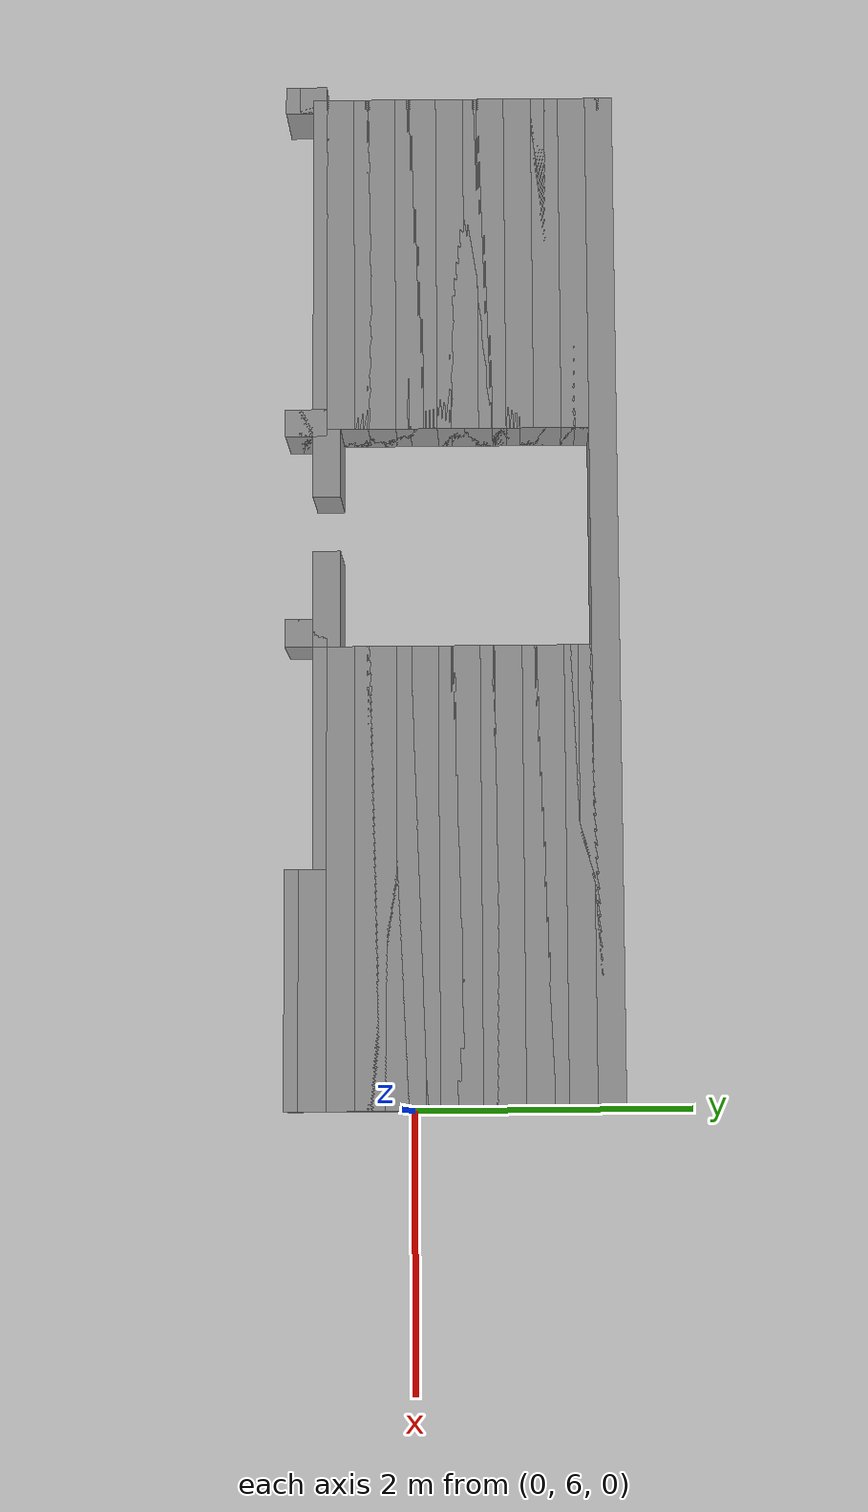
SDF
<sdf version="1.6">
 <world name="GridMap">
  <include><uri>model://sun</uri></include>
  <include><uri>model://ground_plane</uri></include>
  <model name="GridMap">
   <link name="Wall_(8.5,52.0)">
    <collision name="Wall_(8.5,52.0)_Collision">
     <geometry><box><size>1.7000000000000002 0.2 0.5</size></box></geometry>
     <pose>-0.8500000000000001 5.2 0.25 0 -0 0</pose>
    </collision>
    <inertial>
     <mass>0.5</mass>
     <pose>0 0.01 0 0 0 0</pose>
     <inertia><ixx>0.004</ixx><ixy>0.001</ixy><ixz>0</ixz><iyy>0.006</iyy><iyz>0</iyz><izz>0.007</izz></inertia>
    </inertial>
    <visual name="Wall_(8.5,52.0)_Visual">
     <geometry><box><size>1.7000000000000002 0.2 0.5</size></box></geometry>
     <pose>-0.8500000000000001 5.2 0.25 0 -0 0</pose>
     <material>
      <script><uri>file://media/materials/scripts/gazebo.material</uri><name>Gazebo/Grey</name></script>
      <ambient>1 1 1 1</ambient>
     </material>
     <meta><layer>0</layer></meta>
    </visual>
   </link>
   <link name="Wall_(34.0,52.0)">
    <collision name="Wall_(34.0,52.0)_Collision">
     <geometry><box><size>0.2 0.2 0.5</size></box></geometry>
     <pose>-3.4000000000000004 5.2 0.25 0 -0 0</pose>
    </collision>
    <inertial>
     <mass>0.5</mass>
     <pose>0 0.01 0 0 0 0</pose>
     <inertia><ixx>0.004</ixx><ixy>0.001</ixy><ixz>0</ixz><iyy>0.006</iyy><iyz>0</iyz><izz>0.007</izz></inertia>
    </inertial>
    <visual name="Wall_(34.0,52.0)_Visual">
     <geometry><box><size>0.2 0.2 0.5</size></box></geometry>
     <pose>-3.4000000000000004 5.2 0.25 0 -0 0</pose>
     <material>
      <script><uri>file://media/materials/scripts/gazebo.material</uri><name>Gazebo/Grey</name></script>
      <ambient>1 1 1 1</ambient>
     </material>
     <meta><layer>0</layer></meta>
    </visual>
   </link>
   <link name="Wall_(49.5,52.0)">
    <collision name="Wall_(49.5,52.0)_Collision">
     <geometry><box><size>0.2 0.2 0.5</size></box></geometry>
     <pose>-4.95 5.2 0.25 0 -0 0</pose>
    </collision>
    <inertial>
     <mass>0.5</mass>
     <pose>0 0.01 0 0 0 0</pose>
     <inertia><ixx>0.004</ixx><ixy>0.001</ixy><ixz>0</ixz><iyy>0.006</iyy><iyz>0</iyz><izz>0.007</izz></inertia>
    </inertial>
    <visual name="Wall_(49.5,52.0)_Visual">
     <geometry><box><size>0.2 0.2 0.5</size></box></geometry>
     <pose>-4.95 5.2 0.25 0 -0 0</pose>
     <material>
      <script><uri>file://media/materials/scripts/gazebo.material</uri><name>Gazebo/Grey</name></script>
      <ambient>1 1 1 1</ambient>
     </material>
     <meta><layer>0</layer></meta>
    </visual>
   </link>
   <link name="Wall_(74.0,52.0)">
    <collision name="Wall_(74.0,52.0)_Collision">
     <geometry><box><size>0.2 0.2 0.5</size></box></geometry>
     <pose>-7.4 5.2 0.25 0 -0 0</pose>
    </collision>
    <inertial>
     <mass>0.5</mass>
     <pose>0 0.01 0 0 0 0</pose>
     <inertia><ixx>0.004</ixx><ixy>0.001</ixy><ixz>0</ixz><iyy>0.006</iyy><iyz>0</iyz><izz>0.007</izz></inertia>
    </inertial>
    <visual name="Wall_(74.0,52.0)_Visual">
     <geometry><box><size>0.2 0.2 0.5</size></box></geometry>
     <pose>-7.4 5.2 0.25 0 -0 0</pose>
     <material>
      <script><uri>file://media/materials/scripts/gazebo.material</uri><name>Gazebo/Grey</name></script>
      <ambient>1 1 1 1</ambient>
     </material>
     <meta><layer>0</layer></meta>
    </visual>
   </link>
   <link name="Wall_(8.5,53.0)">
    <collision name="Wall_(8.5,53.0)_Collision">
     <geometry><box><size>1.7000000000000002 0.2 0.5</size></box></geometry>
     <pose>-0.8500000000000001 5.300000000000001 0.25 0 -0 0</pose>
    </collision>
    <inertial>
     <mass>0.5</mass>
     <pose>0 0.01 0 0 0 0</pose>
     <inertia><ixx>0.004</ixx><ixy>0.001</ixy><ixz>0</ixz><iyy>0.006</iyy><iyz>0</iyz><izz>0.007</izz></inertia>
    </inertial>
    <visual name="Wall_(8.5,53.0)_Visual">
     <geometry><box><size>1.7000000000000002 0.2 0.5</size></box></geometry>
     <pose>-0.8500000000000001 5.300000000000001 0.25 0 -0 0</pose>
     <material>
      <script><uri>file://media/materials/scripts/gazebo.material</uri><name>Gazebo/Grey</name></script>
      <ambient>1 1 1 1</ambient>
     </material>
     <meta><layer>0</layer></meta>
    </visual>
   </link>
   <link name="Wall_(34.0,53.0)">
    <collision name="Wall_(34.0,53.0)_Collision">
     <geometry><box><size>0.2 0.2 0.5</size></box></geometry>
     <pose>-3.4000000000000004 5.300000000000001 0.25 0 -0 0</pose>
    </collision>
    <inertial>
     <mass>0.5</mass>
     <pose>0 0.01 0 0 0 0</pose>
     <inertia><ixx>0.004</ixx><ixy>0.001</ixy><ixz>0</ixz><iyy>0.006</iyy><iyz>0</iyz><izz>0.007</izz></inertia>
    </inertial>
    <visual name="Wall_(34.0,53.0)_Visual">
     <geometry><box><size>0.2 0.2 0.5</size></box></geometry>
     <pose>-3.4000000000000004 5.300000000000001 0.25 0 -0 0</pose>
     <material>
      <script><uri>file://media/materials/scripts/gazebo.material</uri><name>Gazebo/Grey</name></script>
      <ambient>1 1 1 1</ambient>
     </material>
     <meta><layer>0</layer></meta>
    </visual>
   </link>
   <link name="Wall_(49.5,53.0)">
    <collision name="Wall_(49.5,53.0)_Collision">
     <geometry><box><size>0.2 0.2 0.5</size></box></geometry>
     <pose>-4.95 5.300000000000001 0.25 0 -0 0</pose>
    </collision>
    <inertial>
     <mass>0.5</mass>
     <pose>0 0.01 0 0 0 0</pose>
     <inertia><ixx>0.004</ixx><ixy>0.001</ixy><ixz>0</ixz><iyy>0.006</iyy><iyz>0</iyz><izz>0.007</izz></inertia>
    </inertial>
    <visual name="Wall_(49.5,53.0)_Visual">
     <geometry><box><size>0.2 0.2 0.5</size></box></geometry>
     <pose>-4.95 5.300000000000001 0.25 0 -0 0</pose>
     <material>
      <script><uri>file://media/materials/scripts/gazebo.material</uri><name>Gazebo/Grey</name></script>
      <ambient>1 1 1 1</ambient>
     </material>
     <meta><layer>0</layer></meta>
    </visual>
   </link>
   <link name="Wall_(74.0,53.0)">
    <collision name="Wall_(74.0,53.0)_Collision">
     <geometry><box><size>0.2 0.2 0.5</size></box></geometry>
     <pose>-7.4 5.300000000000001 0.25 0 -0 0</pose>
    </collision>
    <inertial>
     <mass>0.5</mass>
     <pose>0 0.01 0 0 0 0</pose>
     <inertia><ixx>0.004</ixx><ixy>0.001</ixy><ixz>0</ixz><iyy>0.006</iyy><iyz>0</iyz><izz>0.007</izz></inertia>
    </inertial>
    <visual name="Wall_(74.0,53.0)_Visual">
     <geometry><box><size>0.2 0.2 0.5</size></box></geometry>
     <pose>-7.4 5.300000000000001 0.25 0 -0 0</pose>
     <material>
      <script><uri>file://media/materials/scripts/gazebo.material</uri><name>Gazebo/Grey</name></script>
      <ambient>1 1 1 1</ambient>
     </material>
     <meta><layer>0</layer></meta>
    </visual>
   </link>
   <link name="Wall_(20.0,54.0)">
    <collision name="Wall_(20.0,54.0)_Collision">
     <geometry><box><size>4.0 0.2 0.5</size></box></geometry>
     <pose>-2.0 5.4 0.25 0 -0 0</pose>
    </collision>
    <inertial>
     <mass>0.5</mass>
     <pose>0 0.01 0 0 0 0</pose>
     <inertia><ixx>0.004</ixx><ixy>0.001</ixy><ixz>0</ixz><iyy>0.006</iyy><iyz>0</iyz><izz>0.007</izz></inertia>
    </inertial>
    <visual name="Wall_(20.0,54.0)_Visual">
     <geometry><box><size>4.0 0.2 0.5</size></box></geometry>
     <pose>-2.0 5.4 0.25 0 -0 0</pose>
     <material>
      <script><uri>file://media/materials/scripts/gazebo.material</uri><name>Gazebo/Grey</name></script>
      <ambient>1 1 1 1</ambient>
     </material>
     <meta><layer>0</layer></meta>
    </visual>
   </link>
   <link name="Wall_(59.0,54.0)">
    <collision name="Wall_(59.0,54.0)_Collision">
     <geometry><box><size>3.0 0.2 0.5</size></box></geometry>
     <pose>-5.9 5.4 0.25 0 -0 0</pose>
    </collision>
    <inertial>
     <mass>0.5</mass>
     <pose>0 0.01 0 0 0 0</pose>
     <inertia><ixx>0.004</ixx><ixy>0.001</ixy><ixz>0</ixz><iyy>0.006</iyy><iyz>0</iyz><izz>0.007</izz></inertia>
    </inertial>
    <visual name="Wall_(59.0,54.0)_Visual">
     <geometry><box><size>3.0 0.2 0.5</size></box></geometry>
     <pose>-5.9 5.4 0.25 0 -0 0</pose>
     <material>
      <script><uri>file://media/materials/scripts/gazebo.material</uri><name>Gazebo/Grey</name></script>
      <ambient>1 1 1 1</ambient>
     </material>
     <meta><layer>0</layer></meta>
    </visual>
   </link>
   <link name="Wall_(16.5,55.0)">
    <collision name="Wall_(16.5,55.0)_Collision">
     <geometry><box><size>3.3000000000000003 0.2 0.5</size></box></geometry>
     <pose>-1.6500000000000001 5.5 0.25 0 -0 0</pose>
    </collision>
    <inertial>
     <mass>0.5</mass>
     <pose>0 0.01 0 0 0 0</pose>
     <inertia><ixx>0.004</ixx><ixy>0.001</ixy><ixz>0</ixz><iyy>0.006</iyy><iyz>0</iyz><izz>0.007</izz></inertia>
    </inertial>
    <visual name="Wall_(16.5,55.0)_Visual">
     <geometry><box><size>3.3000000000000003 0.2 0.5</size></box></geometry>
     <pose>-1.6500000000000001 5.5 0.25 0 -0 0</pose>
     <material>
      <script><uri>file://media/materials/scripts/gazebo.material</uri><name>Gazebo/Grey</name></script>
      <ambient>1 1 1 1</ambient>
     </material>
     <meta><layer>0</layer></meta>
    </visual>
   </link>
   <link name="Wall_(61.5,55.0)">
    <collision name="Wall_(61.5,55.0)_Collision">
     <geometry><box><size>2.5 0.2 0.5</size></box></geometry>
     <pose>-6.15 5.5 0.25 0 -0 0</pose>
    </collision>
    <inertial>
     <mass>0.5</mass>
     <pose>0 0.01 0 0 0 0</pose>
     <inertia><ixx>0.004</ixx><ixy>0.001</ixy><ixz>0</ixz><iyy>0.006</iyy><iyz>0</iyz><izz>0.007</izz></inertia>
    </inertial>
    <visual name="Wall_(61.5,55.0)_Visual">
     <geometry><box><size>2.5 0.2 0.5</size></box></geometry>
     <pose>-6.15 5.5 0.25 0 -0 0</pose>
     <material>
      <script><uri>file://media/materials/scripts/gazebo.material</uri><name>Gazebo/Grey</name></script>
      <ambient>1 1 1 1</ambient>
     </material>
     <meta><layer>0</layer></meta>
    </visual>
   </link>
   <link name="Wall_(16.5,56.0)">
    <collision name="Wall_(16.5,56.0)_Collision">
     <geometry><box><size>3.3000000000000003 0.2 0.5</size></box></geometry>
     <pose>-1.6500000000000001 5.6000000000000005 0.25 0 -0 0</pose>
    </collision>
    <inertial>
     <mass>0.5</mass>
     <pose>0 0.01 0 0 0 0</pose>
     <inertia><ixx>0.004</ixx><ixy>0.001</ixy><ixz>0</ixz><iyy>0.006</iyy><iyz>0</iyz><izz>0.007</izz></inertia>
    </inertial>
    <visual name="Wall_(16.5,56.0)_Visual">
     <geometry><box><size>3.3000000000000003 0.2 0.5</size></box></geometry>
     <pose>-1.6500000000000001 5.6000000000000005 0.25 0 -0 0</pose>
     <material>
      <script><uri>file://media/materials/scripts/gazebo.material</uri><name>Gazebo/Grey</name></script>
      <ambient>1 1 1 1</ambient>
     </material>
     <meta><layer>0</layer></meta>
    </visual>
   </link>
   <link name="Wall_(61.5,56.0)">
    <collision name="Wall_(61.5,56.0)_Collision">
     <geometry><box><size>2.5 0.2 0.5</size></box></geometry>
     <pose>-6.15 5.6000000000000005 0.25 0 -0 0</pose>
    </collision>
    <inertial>
     <mass>0.5</mass>
     <pose>0 0.01 0 0 0 0</pose>
     <inertia><ixx>0.004</ixx><ixy>0.001</ixy><ixz>0</ixz><iyy>0.006</iyy><iyz>0</iyz><izz>0.007</izz></inertia>
    </inertial>
    <visual name="Wall_(61.5,56.0)_Visual">
     <geometry><box><size>2.5 0.2 0.5</size></box></geometry>
     <pose>-6.15 5.6000000000000005 0.25 0 -0 0</pose>
     <material>
      <script><uri>file://media/materials/scripts/gazebo.material</uri><name>Gazebo/Grey</name></script>
      <ambient>1 1 1 1</ambient>
     </material>
     <meta><layer>0</layer></meta>
    </visual>
   </link>
   <link name="Wall_(16.5,57.0)">
    <collision name="Wall_(16.5,57.0)_Collision">
     <geometry><box><size>3.3000000000000003 0.2 0.5</size></box></geometry>
     <pose>-1.6500000000000001 5.7 0.25 0 -0 0</pose>
    </collision>
    <inertial>
     <mass>0.5</mass>
     <pose>0 0.01 0 0 0 0</pose>
     <inertia><ixx>0.004</ixx><ixy>0.001</ixy><ixz>0</ixz><iyy>0.006</iyy><iyz>0</iyz><izz>0.007</izz></inertia>
    </inertial>
    <visual name="Wall_(16.5,57.0)_Visual">
     <geometry><box><size>3.3000000000000003 0.2 0.5</size></box></geometry>
     <pose>-1.6500000000000001 5.7 0.25 0 -0 0</pose>
     <material>
      <script><uri>file://media/materials/scripts/gazebo.material</uri><name>Gazebo/Grey</name></script>
      <ambient>1 1 1 1</ambient>
     </material>
     <meta><layer>0</layer></meta>
    </visual>
   </link>
   <link name="Wall_(61.5,57.0)">
    <collision name="Wall_(61.5,57.0)_Collision">
     <geometry><box><size>2.5 0.2 0.5</size></box></geometry>
     <pose>-6.15 5.7 0.25 0 -0 0</pose>
    </collision>
    <inertial>
     <mass>0.5</mass>
     <pose>0 0.01 0 0 0 0</pose>
     <inertia><ixx>0.004</ixx><ixy>0.001</ixy><ixz>0</ixz><iyy>0.006</iyy><iyz>0</iyz><izz>0.007</izz></inertia>
    </inertial>
    <visual name="Wall_(61.5,57.0)_Visual">
     <geometry><box><size>2.5 0.2 0.5</size></box></geometry>
     <pose>-6.15 5.7 0.25 0 -0 0</pose>
     <material>
      <script><uri>file://media/materials/scripts/gazebo.material</uri><name>Gazebo/Grey</name></script>
      <ambient>1 1 1 1</ambient>
     </material>
     <meta><layer>0</layer></meta>
    </visual>
   </link>
   <link name="Wall_(16.5,58.0)">
    <collision name="Wall_(16.5,58.0)_Collision">
     <geometry><box><size>3.3000000000000003 0.2 0.5</size></box></geometry>
     <pose>-1.6500000000000001 5.800000000000001 0.25 0 -0 0</pose>
    </collision>
    <inertial>
     <mass>0.5</mass>
     <pose>0 0.01 0 0 0 0</pose>
     <inertia><ixx>0.004</ixx><ixy>0.001</ixy><ixz>0</ixz><iyy>0.006</iyy><iyz>0</iyz><izz>0.007</izz></inertia>
    </inertial>
    <visual name="Wall_(16.5,58.0)_Visual">
     <geometry><box><size>3.3000000000000003 0.2 0.5</size></box></geometry>
     <pose>-1.6500000000000001 5.800000000000001 0.25 0 -0 0</pose>
     <material>
      <script><uri>file://media/materials/scripts/gazebo.material</uri><name>Gazebo/Grey</name></script>
      <ambient>1 1 1 1</ambient>
     </material>
     <meta><layer>0</layer></meta>
    </visual>
   </link>
   <link name="Wall_(61.5,58.0)">
    <collision name="Wall_(61.5,58.0)_Collision">
     <geometry><box><size>2.5 0.2 0.5</size></box></geometry>
     <pose>-6.15 5.800000000000001 0.25 0 -0 0</pose>
    </collision>
    <inertial>
     <mass>0.5</mass>
     <pose>0 0.01 0 0 0 0</pose>
     <inertia><ixx>0.004</ixx><ixy>0.001</ixy><ixz>0</ixz><iyy>0.006</iyy><iyz>0</iyz><izz>0.007</izz></inertia>
    </inertial>
    <visual name="Wall_(61.5,58.0)_Visual">
     <geometry><box><size>2.5 0.2 0.5</size></box></geometry>
     <pose>-6.15 5.800000000000001 0.25 0 -0 0</pose>
     <material>
      <script><uri>file://media/materials/scripts/gazebo.material</uri><name>Gazebo/Grey</name></script>
      <ambient>1 1 1 1</ambient>
     </material>
     <meta><layer>0</layer></meta>
    </visual>
   </link>
   <link name="Wall_(16.5,59.0)">
    <collision name="Wall_(16.5,59.0)_Collision">
     <geometry><box><size>3.3000000000000003 0.2 0.5</size></box></geometry>
     <pose>-1.6500000000000001 5.9 0.25 0 -0 0</pose>
    </collision>
    <inertial>
     <mass>0.5</mass>
     <pose>0 0.01 0 0 0 0</pose>
     <inertia><ixx>0.004</ixx><ixy>0.001</ixy><ixz>0</ixz><iyy>0.006</iyy><iyz>0</iyz><izz>0.007</izz></inertia>
    </inertial>
    <visual name="Wall_(16.5,59.0)_Visual">
     <geometry><box><size>3.3000000000000003 0.2 0.5</size></box></geometry>
     <pose>-1.6500000000000001 5.9 0.25 0 -0 0</pose>
     <material>
      <script><uri>file://media/materials/scripts/gazebo.material</uri><name>Gazebo/Grey</name></script>
      <ambient>1 1 1 1</ambient>
     </material>
     <meta><layer>0</layer></meta>
    </visual>
   </link>
   <link name="Wall_(61.5,59.0)">
    <collision name="Wall_(61.5,59.0)_Collision">
     <geometry><box><size>2.5 0.2 0.5</size></box></geometry>
     <pose>-6.15 5.9 0.25 0 -0 0</pose>
    </collision>
    <inertial>
     <mass>0.5</mass>
     <pose>0 0.01 0 0 0 0</pose>
     <inertia><ixx>0.004</ixx><ixy>0.001</ixy><ixz>0</ixz><iyy>0.006</iyy><iyz>0</iyz><izz>0.007</izz></inertia>
    </inertial>
    <visual name="Wall_(61.5,59.0)_Visual">
     <geometry><box><size>2.5 0.2 0.5</size></box></geometry>
     <pose>-6.15 5.9 0.25 0 -0 0</pose>
     <material>
      <script><uri>file://media/materials/scripts/gazebo.material</uri><name>Gazebo/Grey</name></script>
      <ambient>1 1 1 1</ambient>
     </material>
     <meta><layer>0</layer></meta>
    </visual>
   </link>
   <link name="Wall_(16.5,60.0)">
    <collision name="Wall_(16.5,60.0)_Collision">
     <geometry><box><size>3.3000000000000003 0.2 0.5</size></box></geometry>
     <pose>-1.6500000000000001 6.0 0.25 0 -0 0</pose>
    </collision>
    <inertial>
     <mass>0.5</mass>
     <pose>0 0.01 0 0 0 0</pose>
     <inertia><ixx>0.004</ixx><ixy>0.001</ixy><ixz>0</ixz><iyy>0.006</iyy><iyz>0</iyz><izz>0.007</izz></inertia>
    </inertial>
    <visual name="Wall_(16.5,60.0)_Visual">
     <geometry><box><size>3.3000000000000003 0.2 0.5</size></box></geometry>
     <pose>-1.6500000000000001 6.0 0.25 0 -0 0</pose>
     <material>
      <script><uri>file://media/materials/scripts/gazebo.material</uri><name>Gazebo/Grey</name></script>
      <ambient>1 1 1 1</ambient>
     </material>
     <meta><layer>0</layer></meta>
    </visual>
   </link>
   <link name="Wall_(61.5,60.0)">
    <collision name="Wall_(61.5,60.0)_Collision">
     <geometry><box><size>2.5 0.2 0.5</size></box></geometry>
     <pose>-6.15 6.0 0.25 0 -0 0</pose>
    </collision>
    <inertial>
     <mass>0.5</mass>
     <pose>0 0.01 0 0 0 0</pose>
     <inertia><ixx>0.004</ixx><ixy>0.001</ixy><ixz>0</ixz><iyy>0.006</iyy><iyz>0</iyz><izz>0.007</izz></inertia>
    </inertial>
    <visual name="Wall_(61.5,60.0)_Visual">
     <geometry><box><size>2.5 0.2 0.5</size></box></geometry>
     <pose>-6.15 6.0 0.25 0 -0 0</pose>
     <material>
      <script><uri>file://media/materials/scripts/gazebo.material</uri><name>Gazebo/Grey</name></script>
      <ambient>1 1 1 1</ambient>
     </material>
     <meta><layer>0</layer></meta>
    </visual>
   </link>
   <link name="Wall_(16.5,61.0)">
    <collision name="Wall_(16.5,61.0)_Collision">
     <geometry><box><size>3.3000000000000003 0.2 0.5</size></box></geometry>
     <pose>-1.6500000000000001 6.1000000000000005 0.25 0 -0 0</pose>
    </collision>
    <inertial>
     <mass>0.5</mass>
     <pose>0 0.01 0 0 0 0</pose>
     <inertia><ixx>0.004</ixx><ixy>0.001</ixy><ixz>0</ixz><iyy>0.006</iyy><iyz>0</iyz><izz>0.007</izz></inertia>
    </inertial>
    <visual name="Wall_(16.5,61.0)_Visual">
     <geometry><box><size>3.3000000000000003 0.2 0.5</size></box></geometry>
     <pose>-1.6500000000000001 6.1000000000000005 0.25 0 -0 0</pose>
     <material>
      <script><uri>file://media/materials/scripts/gazebo.material</uri><name>Gazebo/Grey</name></script>
      <ambient>1 1 1 1</ambient>
     </material>
     <meta><layer>0</layer></meta>
    </visual>
   </link>
   <link name="Wall_(61.5,61.0)">
    <collision name="Wall_(61.5,61.0)_Collision">
     <geometry><box><size>2.5 0.2 0.5</size></box></geometry>
     <pose>-6.15 6.1000000000000005 0.25 0 -0 0</pose>
    </collision>
    <inertial>
     <mass>0.5</mass>
     <pose>0 0.01 0 0 0 0</pose>
     <inertia><ixx>0.004</ixx><ixy>0.001</ixy><ixz>0</ixz><iyy>0.006</iyy><iyz>0</iyz><izz>0.007</izz></inertia>
    </inertial>
    <visual name="Wall_(61.5,61.0)_Visual">
     <geometry><box><size>2.5 0.2 0.5</size></box></geometry>
     <pose>-6.15 6.1000000000000005 0.25 0 -0 0</pose>
     <material>
      <script><uri>file://media/materials/scripts/gazebo.material</uri><name>Gazebo/Grey</name></script>
      <ambient>1 1 1 1</ambient>
     </material>
     <meta><layer>0</layer></meta>
    </visual>
   </link>
   <link name="Wall_(16.5,62.0)">
    <collision name="Wall_(16.5,62.0)_Collision">
     <geometry><box><size>3.3000000000000003 0.2 0.5</size></box></geometry>
     <pose>-1.6500000000000001 6.2 0.25 0 -0 0</pose>
    </collision>
    <inertial>
     <mass>0.5</mass>
     <pose>0 0.01 0 0 0 0</pose>
     <inertia><ixx>0.004</ixx><ixy>0.001</ixy><ixz>0</ixz><iyy>0.006</iyy><iyz>0</iyz><izz>0.007</izz></inertia>
    </inertial>
    <visual name="Wall_(16.5,62.0)_Visual">
     <geometry><box><size>3.3000000000000003 0.2 0.5</size></box></geometry>
     <pose>-1.6500000000000001 6.2 0.25 0 -0 0</pose>
     <material>
      <script><uri>file://media/materials/scripts/gazebo.material</uri><name>Gazebo/Grey</name></script>
      <ambient>1 1 1 1</ambient>
     </material>
     <meta><layer>0</layer></meta>
    </visual>
   </link>
   <link name="Wall_(61.5,62.0)">
    <collision name="Wall_(61.5,62.0)_Collision">
     <geometry><box><size>2.5 0.2 0.5</size></box></geometry>
     <pose>-6.15 6.2 0.25 0 -0 0</pose>
    </collision>
    <inertial>
     <mass>0.5</mass>
     <pose>0 0.01 0 0 0 0</pose>
     <inertia><ixx>0.004</ixx><ixy>0.001</ixy><ixz>0</ixz><iyy>0.006</iyy><iyz>0</iyz><izz>0.007</izz></inertia>
    </inertial>
    <visual name="Wall_(61.5,62.0)_Visual">
     <geometry><box><size>2.5 0.2 0.5</size></box></geometry>
     <pose>-6.15 6.2 0.25 0 -0 0</pose>
     <material>
      <script><uri>file://media/materials/scripts/gazebo.material</uri><name>Gazebo/Grey</name></script>
      <ambient>1 1 1 1</ambient>
     </material>
     <meta><layer>0</layer></meta>
    </visual>
   </link>
   <link name="Wall_(16.5,63.0)">
    <collision name="Wall_(16.5,63.0)_Collision">
     <geometry><box><size>3.3000000000000003 0.2 0.5</size></box></geometry>
     <pose>-1.6500000000000001 6.300000000000001 0.25 0 -0 0</pose>
    </collision>
    <inertial>
     <mass>0.5</mass>
     <pose>0 0.01 0 0 0 0</pose>
     <inertia><ixx>0.004</ixx><ixy>0.001</ixy><ixz>0</ixz><iyy>0.006</iyy><iyz>0</iyz><izz>0.007</izz></inertia>
    </inertial>
    <visual name="Wall_(16.5,63.0)_Visual">
     <geometry><box><size>3.3000000000000003 0.2 0.5</size></box></geometry>
     <pose>-1.6500000000000001 6.300000000000001 0.25 0 -0 0</pose>
     <material>
      <script><uri>file://media/materials/scripts/gazebo.material</uri><name>Gazebo/Grey</name></script>
      <ambient>1 1 1 1</ambient>
     </material>
     <meta><layer>0</layer></meta>
    </visual>
   </link>
   <link name="Wall_(61.5,63.0)">
    <collision name="Wall_(61.5,63.0)_Collision">
     <geometry><box><size>2.5 0.2 0.5</size></box></geometry>
     <pose>-6.15 6.300000000000001 0.25 0 -0 0</pose>
    </collision>
    <inertial>
     <mass>0.5</mass>
     <pose>0 0.01 0 0 0 0</pose>
     <inertia><ixx>0.004</ixx><ixy>0.001</ixy><ixz>0</ixz><iyy>0.006</iyy><iyz>0</iyz><izz>0.007</izz></inertia>
    </inertial>
    <visual name="Wall_(61.5,63.0)_Visual">
     <geometry><box><size>2.5 0.2 0.5</size></box></geometry>
     <pose>-6.15 6.300000000000001 0.25 0 -0 0</pose>
     <material>
      <script><uri>file://media/materials/scripts/gazebo.material</uri><name>Gazebo/Grey</name></script>
      <ambient>1 1 1 1</ambient>
     </material>
     <meta><layer>0</layer></meta>
    </visual>
   </link>
   <link name="Wall_(16.5,64.0)">
    <collision name="Wall_(16.5,64.0)_Collision">
     <geometry><box><size>3.3000000000000003 0.2 0.5</size></box></geometry>
     <pose>-1.6500000000000001 6.4 0.25 0 -0 0</pose>
    </collision>
    <inertial>
     <mass>0.5</mass>
     <pose>0 0.01 0 0 0 0</pose>
     <inertia><ixx>0.004</ixx><ixy>0.001</ixy><ixz>0</ixz><iyy>0.006</iyy><iyz>0</iyz><izz>0.007</izz></inertia>
    </inertial>
    <visual name="Wall_(16.5,64.0)_Visual">
     <geometry><box><size>3.3000000000000003 0.2 0.5</size></box></geometry>
     <pose>-1.6500000000000001 6.4 0.25 0 -0 0</pose>
     <material>
      <script><uri>file://media/materials/scripts/gazebo.material</uri><name>Gazebo/Grey</name></script>
      <ambient>1 1 1 1</ambient>
     </material>
     <meta><layer>0</layer></meta>
    </visual>
   </link>
   <link name="Wall_(61.5,64.0)">
    <collision name="Wall_(61.5,64.0)_Collision">
     <geometry><box><size>2.5 0.2 0.5</size></box></geometry>
     <pose>-6.15 6.4 0.25 0 -0 0</pose>
    </collision>
    <inertial>
     <mass>0.5</mass>
     <pose>0 0.01 0 0 0 0</pose>
     <inertia><ixx>0.004</ixx><ixy>0.001</ixy><ixz>0</ixz><iyy>0.006</iyy><iyz>0</iyz><izz>0.007</izz></inertia>
    </inertial>
    <visual name="Wall_(61.5,64.0)_Visual">
     <geometry><box><size>2.5 0.2 0.5</size></box></geometry>
     <pose>-6.15 6.4 0.25 0 -0 0</pose>
     <material>
      <script><uri>file://media/materials/scripts/gazebo.material</uri><name>Gazebo/Grey</name></script>
      <ambient>1 1 1 1</ambient>
     </material>
     <meta><layer>0</layer></meta>
    </visual>
   </link>
   <link name="Wall_(16.5,65.0)">
    <collision name="Wall_(16.5,65.0)_Collision">
     <geometry><box><size>3.3000000000000003 0.2 0.5</size></box></geometry>
     <pose>-1.6500000000000001 6.5 0.25 0 -0 0</pose>
    </collision>
    <inertial>
     <mass>0.5</mass>
     <pose>0 0.01 0 0 0 0</pose>
     <inertia><ixx>0.004</ixx><ixy>0.001</ixy><ixz>0</ixz><iyy>0.006</iyy><iyz>0</iyz><izz>0.007</izz></inertia>
    </inertial>
    <visual name="Wall_(16.5,65.0)_Visual">
     <geometry><box><size>3.3000000000000003 0.2 0.5</size></box></geometry>
     <pose>-1.6500000000000001 6.5 0.25 0 -0 0</pose>
     <material>
      <script><uri>file://media/materials/scripts/gazebo.material</uri><name>Gazebo/Grey</name></script>
      <ambient>1 1 1 1</ambient>
     </material>
     <meta><layer>0</layer></meta>
    </visual>
   </link>
   <link name="Wall_(61.5,65.0)">
    <collision name="Wall_(61.5,65.0)_Collision">
     <geometry><box><size>2.5 0.2 0.5</size></box></geometry>
     <pose>-6.15 6.5 0.25 0 -0 0</pose>
    </collision>
    <inertial>
     <mass>0.5</mass>
     <pose>0 0.01 0 0 0 0</pose>
     <inertia><ixx>0.004</ixx><ixy>0.001</ixy><ixz>0</ixz><iyy>0.006</iyy><iyz>0</iyz><izz>0.007</izz></inertia>
    </inertial>
    <visual name="Wall_(61.5,65.0)_Visual">
     <geometry><box><size>2.5 0.2 0.5</size></box></geometry>
     <pose>-6.15 6.5 0.25 0 -0 0</pose>
     <material>
      <script><uri>file://media/materials/scripts/gazebo.material</uri><name>Gazebo/Grey</name></script>
      <ambient>1 1 1 1</ambient>
     </material>
     <meta><layer>0</layer></meta>
    </visual>
   </link>
   <link name="Wall_(16.5,66.0)">
    <collision name="Wall_(16.5,66.0)_Collision">
     <geometry><box><size>3.3000000000000003 0.2 0.5</size></box></geometry>
     <pose>-1.6500000000000001 6.6000000000000005 0.25 0 -0 0</pose>
    </collision>
    <inertial>
     <mass>0.5</mass>
     <pose>0 0.01 0 0 0 0</pose>
     <inertia><ixx>0.004</ixx><ixy>0.001</ixy><ixz>0</ixz><iyy>0.006</iyy><iyz>0</iyz><izz>0.007</izz></inertia>
    </inertial>
    <visual name="Wall_(16.5,66.0)_Visual">
     <geometry><box><size>3.3000000000000003 0.2 0.5</size></box></geometry>
     <pose>-1.6500000000000001 6.6000000000000005 0.25 0 -0 0</pose>
     <material>
      <script><uri>file://media/materials/scripts/gazebo.material</uri><name>Gazebo/Grey</name></script>
      <ambient>1 1 1 1</ambient>
     </material>
     <meta><layer>0</layer></meta>
    </visual>
   </link>
   <link name="Wall_(61.5,66.0)">
    <collision name="Wall_(61.5,66.0)_Collision">
     <geometry><box><size>2.5 0.2 0.5</size></box></geometry>
     <pose>-6.15 6.6000000000000005 0.25 0 -0 0</pose>
    </collision>
    <inertial>
     <mass>0.5</mass>
     <pose>0 0.01 0 0 0 0</pose>
     <inertia><ixx>0.004</ixx><ixy>0.001</ixy><ixz>0</ixz><iyy>0.006</iyy><iyz>0</iyz><izz>0.007</izz></inertia>
    </inertial>
    <visual name="Wall_(61.5,66.0)_Visual">
     <geometry><box><size>2.5 0.2 0.5</size></box></geometry>
     <pose>-6.15 6.6000000000000005 0.25 0 -0 0</pose>
     <material>
      <script><uri>file://media/materials/scripts/gazebo.material</uri><name>Gazebo/Grey</name></script>
      <ambient>1 1 1 1</ambient>
     </material>
     <meta><layer>0</layer></meta>
    </visual>
   </link>
   <link name="Wall_(16.5,67.0)">
    <collision name="Wall_(16.5,67.0)_Collision">
     <geometry><box><size>3.3000000000000003 0.2 0.5</size></box></geometry>
     <pose>-1.6500000000000001 6.7 0.25 0 -0 0</pose>
    </collision>
    <inertial>
     <mass>0.5</mass>
     <pose>0 0.01 0 0 0 0</pose>
     <inertia><ixx>0.004</ixx><ixy>0.001</ixy><ixz>0</ixz><iyy>0.006</iyy><iyz>0</iyz><izz>0.007</izz></inertia>
    </inertial>
    <visual name="Wall_(16.5,67.0)_Visual">
     <geometry><box><size>3.3000000000000003 0.2 0.5</size></box></geometry>
     <pose>-1.6500000000000001 6.7 0.25 0 -0 0</pose>
     <material>
      <script><uri>file://media/materials/scripts/gazebo.material</uri><name>Gazebo/Grey</name></script>
      <ambient>1 1 1 1</ambient>
     </material>
     <meta><layer>0</layer></meta>
    </visual>
   </link>
   <link name="Wall_(61.5,67.0)">
    <collision name="Wall_(61.5,67.0)_Collision">
     <geometry><box><size>2.5 0.2 0.5</size></box></geometry>
     <pose>-6.15 6.7 0.25 0 -0 0</pose>
    </collision>
    <inertial>
     <mass>0.5</mass>
     <pose>0 0.01 0 0 0 0</pose>
     <inertia><ixx>0.004</ixx><ixy>0.001</ixy><ixz>0</ixz><iyy>0.006</iyy><iyz>0</iyz><izz>0.007</izz></inertia>
    </inertial>
    <visual name="Wall_(61.5,67.0)_Visual">
     <geometry><box><size>2.5 0.2 0.5</size></box></geometry>
     <pose>-6.15 6.7 0.25 0 -0 0</pose>
     <material>
      <script><uri>file://media/materials/scripts/gazebo.material</uri><name>Gazebo/Grey</name></script>
      <ambient>1 1 1 1</ambient>
     </material>
     <meta><layer>0</layer></meta>
    </visual>
   </link>
   <link name="Wall_(16.5,68.0)">
    <collision name="Wall_(16.5,68.0)_Collision">
     <geometry><box><size>3.3000000000000003 0.2 0.5</size></box></geometry>
     <pose>-1.6500000000000001 6.800000000000001 0.25 0 -0 0</pose>
    </collision>
    <inertial>
     <mass>0.5</mass>
     <pose>0 0.01 0 0 0 0</pose>
     <inertia><ixx>0.004</ixx><ixy>0.001</ixy><ixz>0</ixz><iyy>0.006</iyy><iyz>0</iyz><izz>0.007</izz></inertia>
    </inertial>
    <visual name="Wall_(16.5,68.0)_Visual">
     <geometry><box><size>3.3000000000000003 0.2 0.5</size></box></geometry>
     <pose>-1.6500000000000001 6.800000000000001 0.25 0 -0 0</pose>
     <material>
      <script><uri>file://media/materials/scripts/gazebo.material</uri><name>Gazebo/Grey</name></script>
      <ambient>1 1 1 1</ambient>
     </material>
     <meta><layer>0</layer></meta>
    </visual>
   </link>
   <link name="Wall_(61.5,68.0)">
    <collision name="Wall_(61.5,68.0)_Collision">
     <geometry><box><size>2.5 0.2 0.5</size></box></geometry>
     <pose>-6.15 6.800000000000001 0.25 0 -0 0</pose>
    </collision>
    <inertial>
     <mass>0.5</mass>
     <pose>0 0.01 0 0 0 0</pose>
     <inertia><ixx>0.004</ixx><ixy>0.001</ixy><ixz>0</ixz><iyy>0.006</iyy><iyz>0</iyz><izz>0.007</izz></inertia>
    </inertial>
    <visual name="Wall_(61.5,68.0)_Visual">
     <geometry><box><size>2.5 0.2 0.5</size></box></geometry>
     <pose>-6.15 6.800000000000001 0.25 0 -0 0</pose>
     <material>
      <script><uri>file://media/materials/scripts/gazebo.material</uri><name>Gazebo/Grey</name></script>
      <ambient>1 1 1 1</ambient>
     </material>
     <meta><layer>0</layer></meta>
    </visual>
   </link>
   <link name="Wall_(16.5,69.0)">
    <collision name="Wall_(16.5,69.0)_Collision">
     <geometry><box><size>3.3000000000000003 0.2 0.5</size></box></geometry>
     <pose>-1.6500000000000001 6.9 0.25 0 -0 0</pose>
    </collision>
    <inertial>
     <mass>0.5</mass>
     <pose>0 0.01 0 0 0 0</pose>
     <inertia><ixx>0.004</ixx><ixy>0.001</ixy><ixz>0</ixz><iyy>0.006</iyy><iyz>0</iyz><izz>0.007</izz></inertia>
    </inertial>
    <visual name="Wall_(16.5,69.0)_Visual">
     <geometry><box><size>3.3000000000000003 0.2 0.5</size></box></geometry>
     <pose>-1.6500000000000001 6.9 0.25 0 -0 0</pose>
     <material>
      <script><uri>file://media/materials/scripts/gazebo.material</uri><name>Gazebo/Grey</name></script>
      <ambient>1 1 1 1</ambient>
     </material>
     <meta><layer>0</layer></meta>
    </visual>
   </link>
   <link name="Wall_(61.5,69.0)">
    <collision name="Wall_(61.5,69.0)_Collision">
     <geometry><box><size>2.5 0.2 0.5</size></box></geometry>
     <pose>-6.15 6.9 0.25 0 -0 0</pose>
    </collision>
    <inertial>
     <mass>0.5</mass>
     <pose>0 0.01 0 0 0 0</pose>
     <inertia><ixx>0.004</ixx><ixy>0.001</ixy><ixz>0</ixz><iyy>0.006</iyy><iyz>0</iyz><izz>0.007</izz></inertia>
    </inertial>
    <visual name="Wall_(61.5,69.0)_Visual">
     <geometry><box><size>2.5 0.2 0.5</size></box></geometry>
     <pose>-6.15 6.9 0.25 0 -0 0</pose>
     <material>
      <script><uri>file://media/materials/scripts/gazebo.material</uri><name>Gazebo/Grey</name></script>
      <ambient>1 1 1 1</ambient>
     </material>
     <meta><layer>0</layer></meta>
    </visual>
   </link>
   <link name="Wall_(16.5,70.0)">
    <collision name="Wall_(16.5,70.0)_Collision">
     <geometry><box><size>3.3000000000000003 0.2 0.5</size></box></geometry>
     <pose>-1.6500000000000001 7.0 0.25 0 -0 0</pose>
    </collision>
    <inertial>
     <mass>0.5</mass>
     <pose>0 0.01 0 0 0 0</pose>
     <inertia><ixx>0.004</ixx><ixy>0.001</ixy><ixz>0</ixz><iyy>0.006</iyy><iyz>0</iyz><izz>0.007</izz></inertia>
    </inertial>
    <visual name="Wall_(16.5,70.0)_Visual">
     <geometry><box><size>3.3000000000000003 0.2 0.5</size></box></geometry>
     <pose>-1.6500000000000001 7.0 0.25 0 -0 0</pose>
     <material>
      <script><uri>file://media/materials/scripts/gazebo.material</uri><name>Gazebo/Grey</name></script>
      <ambient>1 1 1 1</ambient>
     </material>
     <meta><layer>0</layer></meta>
    </visual>
   </link>
   <link name="Wall_(61.5,70.0)">
    <collision name="Wall_(61.5,70.0)_Collision">
     <geometry><box><size>2.5 0.2 0.5</size></box></geometry>
     <pose>-6.15 7.0 0.25 0 -0 0</pose>
    </collision>
    <inertial>
     <mass>0.5</mass>
     <pose>0 0.01 0 0 0 0</pose>
     <inertia><ixx>0.004</ixx><ixy>0.001</ixy><ixz>0</ixz><iyy>0.006</iyy><iyz>0</iyz><izz>0.007</izz></inertia>
    </inertial>
    <visual name="Wall_(61.5,70.0)_Visual">
     <geometry><box><size>2.5 0.2 0.5</size></box></geometry>
     <pose>-6.15 7.0 0.25 0 -0 0</pose>
     <material>
      <script><uri>file://media/materials/scripts/gazebo.material</uri><name>Gazebo/Grey</name></script>
      <ambient>1 1 1 1</ambient>
     </material>
     <meta><layer>0</layer></meta>
    </visual>
   </link>
   <link name="Wall_(16.5,71.0)">
    <collision name="Wall_(16.5,71.0)_Collision">
     <geometry><box><size>3.3000000000000003 0.2 0.5</size></box></geometry>
     <pose>-1.6500000000000001 7.1000000000000005 0.25 0 -0 0</pose>
    </collision>
    <inertial>
     <mass>0.5</mass>
     <pose>0 0.01 0 0 0 0</pose>
     <inertia><ixx>0.004</ixx><ixy>0.001</ixy><ixz>0</ixz><iyy>0.006</iyy><iyz>0</iyz><izz>0.007</izz></inertia>
    </inertial>
    <visual name="Wall_(16.5,71.0)_Visual">
     <geometry><box><size>3.3000000000000003 0.2 0.5</size></box></geometry>
     <pose>-1.6500000000000001 7.1000000000000005 0.25 0 -0 0</pose>
     <material>
      <script><uri>file://media/materials/scripts/gazebo.material</uri><name>Gazebo/Grey</name></script>
      <ambient>1 1 1 1</ambient>
     </material>
     <meta><layer>0</layer></meta>
    </visual>
   </link>
   <link name="Wall_(61.5,71.0)">
    <collision name="Wall_(61.5,71.0)_Collision">
     <geometry><box><size>2.5 0.2 0.5</size></box></geometry>
     <pose>-6.15 7.1000000000000005 0.25 0 -0 0</pose>
    </collision>
    <inertial>
     <mass>0.5</mass>
     <pose>0 0.01 0 0 0 0</pose>
     <inertia><ixx>0.004</ixx><ixy>0.001</ixy><ixz>0</ixz><iyy>0.006</iyy><iyz>0</iyz><izz>0.007</izz></inertia>
    </inertial>
    <visual name="Wall_(61.5,71.0)_Visual">
     <geometry><box><size>2.5 0.2 0.5</size></box></geometry>
     <pose>-6.15 7.1000000000000005 0.25 0 -0 0</pose>
     <material>
      <script><uri>file://media/materials/scripts/gazebo.material</uri><name>Gazebo/Grey</name></script>
      <ambient>1 1 1 1</ambient>
     </material>
     <meta><layer>0</layer></meta>
    </visual>
   </link>
   <link name="Wall_(16.5,72.0)">
    <collision name="Wall_(16.5,72.0)_Collision">
     <geometry><box><size>3.3000000000000003 0.2 0.5</size></box></geometry>
     <pose>-1.6500000000000001 7.2 0.25 0 -0 0</pose>
    </collision>
    <inertial>
     <mass>0.5</mass>
     <pose>0 0.01 0 0 0 0</pose>
     <inertia><ixx>0.004</ixx><ixy>0.001</ixy><ixz>0</ixz><iyy>0.006</iyy><iyz>0</iyz><izz>0.007</izz></inertia>
    </inertial>
    <visual name="Wall_(16.5,72.0)_Visual">
     <geometry><box><size>3.3000000000000003 0.2 0.5</size></box></geometry>
     <pose>-1.6500000000000001 7.2 0.25 0 -0 0</pose>
     <material>
      <script><uri>file://media/materials/scripts/gazebo.material</uri><name>Gazebo/Grey</name></script>
      <ambient>1 1 1 1</ambient>
     </material>
     <meta><layer>0</layer></meta>
    </visual>
   </link>
   <link name="Wall_(61.5,72.0)">
    <collision name="Wall_(61.5,72.0)_Collision">
     <geometry><box><size>2.5 0.2 0.5</size></box></geometry>
     <pose>-6.15 7.2 0.25 0 -0 0</pose>
    </collision>
    <inertial>
     <mass>0.5</mass>
     <pose>0 0.01 0 0 0 0</pose>
     <inertia><ixx>0.004</ixx><ixy>0.001</ixy><ixz>0</ixz><iyy>0.006</iyy><iyz>0</iyz><izz>0.007</izz></inertia>
    </inertial>
    <visual name="Wall_(61.5,72.0)_Visual">
     <geometry><box><size>2.5 0.2 0.5</size></box></geometry>
     <pose>-6.15 7.2 0.25 0 -0 0</pose>
     <material>
      <script><uri>file://media/materials/scripts/gazebo.material</uri><name>Gazebo/Grey</name></script>
      <ambient>1 1 1 1</ambient>
     </material>
     <meta><layer>0</layer></meta>
    </visual>
   </link>
   <link name="Wall_(16.5,73.0)">
    <collision name="Wall_(16.5,73.0)_Collision">
     <geometry><box><size>3.3000000000000003 0.2 0.5</size></box></geometry>
     <pose>-1.6500000000000001 7.300000000000001 0.25 0 -0 0</pose>
    </collision>
    <inertial>
     <mass>0.5</mass>
     <pose>0 0.01 0 0 0 0</pose>
     <inertia><ixx>0.004</ixx><ixy>0.001</ixy><ixz>0</ixz><iyy>0.006</iyy><iyz>0</iyz><izz>0.007</izz></inertia>
    </inertial>
    <visual name="Wall_(16.5,73.0)_Visual">
     <geometry><box><size>3.3000000000000003 0.2 0.5</size></box></geometry>
     <pose>-1.6500000000000001 7.300000000000001 0.25 0 -0 0</pose>
     <material>
      <script><uri>file://media/materials/scripts/gazebo.material</uri><name>Gazebo/Grey</name></script>
      <ambient>1 1 1 1</ambient>
     </material>
     <meta><layer>0</layer></meta>
    </visual>
   </link>
   <link name="Wall_(61.5,73.0)">
    <collision name="Wall_(61.5,73.0)_Collision">
     <geometry><box><size>2.5 0.2 0.5</size></box></geometry>
     <pose>-6.15 7.300000000000001 0.25 0 -0 0</pose>
    </collision>
    <inertial>
     <mass>0.5</mass>
     <pose>0 0.01 0 0 0 0</pose>
     <inertia><ixx>0.004</ixx><ixy>0.001</ixy><ixz>0</ixz><iyy>0.006</iyy><iyz>0</iyz><izz>0.007</izz></inertia>
    </inertial>
    <visual name="Wall_(61.5,73.0)_Visual">
     <geometry><box><size>2.5 0.2 0.5</size></box></geometry>
     <pose>-6.15 7.300000000000001 0.25 0 -0 0</pose>
     <material>
      <script><uri>file://media/materials/scripts/gazebo.material</uri><name>Gazebo/Grey</name></script>
      <ambient>1 1 1 1</ambient>
     </material>
     <meta><layer>0</layer></meta>
    </visual>
   </link>
   <link name="Wall_(37.0,74.0)">
    <collision name="Wall_(37.0,74.0)_Collision">
     <geometry><box><size>7.4 0.2 0.5</size></box></geometry>
     <pose>-3.7 7.4 0.25 0 -0 0</pose>
    </collision>
    <inertial>
     <mass>0.5</mass>
     <pose>0 0.01 0 0 0 0</pose>
     <inertia><ixx>0.004</ixx><ixy>0.001</ixy><ixz>0</ixz><iyy>0.006</iyy><iyz>0</iyz><izz>0.007</izz></inertia>
    </inertial>
    <visual name="Wall_(37.0,74.0)_Visual">
     <geometry><box><size>7.4 0.2 0.5</size></box></geometry>
     <pose>-3.7 7.4 0.25 0 -0 0</pose>
     <material>
      <script><uri>file://media/materials/scripts/gazebo.material</uri><name>Gazebo/Grey</name></script>
      <ambient>1 1 1 1</ambient>
     </material>
     <meta><layer>0</layer></meta>
    </visual>
   </link>
   <static>1</static>
  </model>
 </world>
</sdf>
